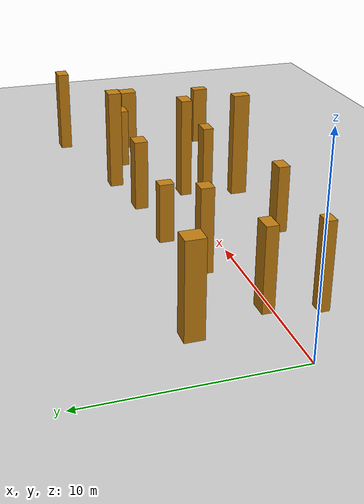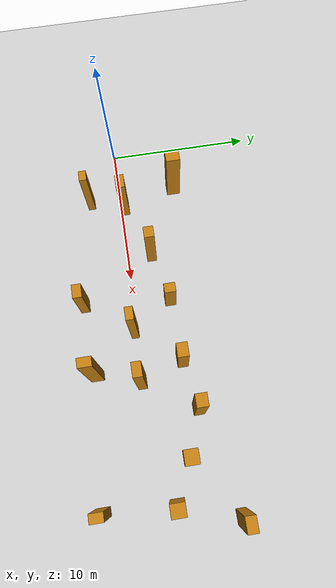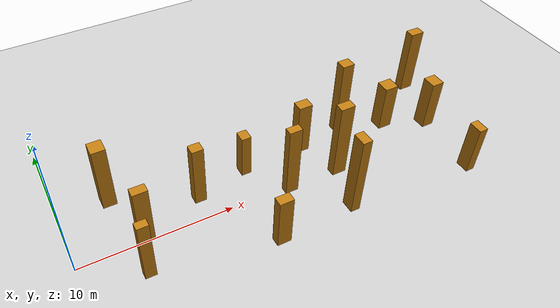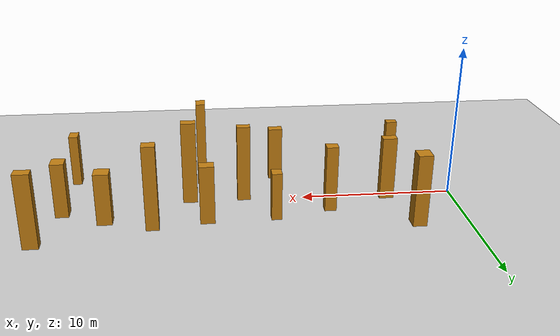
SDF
<sdf version="1.7">
 <world name="default">
  <light name="sun" type="directional">
   <pose>0 0 10 0 -0 0</pose>
   <diffuse>0.8 0.8 0.8 1</diffuse>
   <specular>0.2 0.2 0.2 1</specular>
   <attenuation>
    <range>1000</range>
    <constant>0.9</constant>
    <linear>0.01</linear>
    <quadratic>0.001</quadratic>
   </attenuation>
   <direction>-0.5 0.1 -0.9</direction>
   <spot><inner_angle>0</inner_angle><outer_angle>0</outer_angle><falloff>0</falloff></spot>
  </light>
  <model name="ground_plane">
   <static>1</static>
   <link name="link">
    <collision name="collision">
     <geometry><plane><normal>0 0 1</normal><size>100 100</size></plane></geometry>
     <surface>
      <contact><collide_bitmask>65535</collide_bitmask></contact>
      <friction><ode><mu>100</mu><mu2>50</mu2></ode></friction>
     </surface>
    </collision>
    <visual name="visual">
     <cast_shadows>0</cast_shadows>
     <geometry><plane><normal>0 0 1</normal><size>100 100</size></plane></geometry>
     <material>
      <script><uri>file://media/materials/scripts/gazebo.material</uri><name>Gazebo/Grey</name></script>
     </material>
    </visual>
   </link>
  </model>
  <gravity>0 0 -9.8</gravity>
  <magnetic_field>6e-06 2.3e-05 -4.2e-05</magnetic_field>
  <atmosphere type="adiabatic"/>
  <physics type="ode">
   <max_step_size>0.001</max_step_size>
   <real_time_factor>1</real_time_factor>
   <real_time_update_rate>1000</real_time_update_rate>
  </physics>
  <scene><ambient>0.4 0.4 0.4 1</ambient><background>0.7 0.7 0.7 1</background><shadows>1</shadows></scene>
  <spherical_coordinates>
   <surface_model>EARTH_WGS84</surface_model>
   <latitude_deg>0</latitude_deg>
   <longitude_deg>0</longitude_deg>
   <elevation>0</elevation>
   <heading_deg>0</heading_deg>
  </spherical_coordinates>
  <plugin name="gazebo_octomap" filename="libBuildOctomapPlugin.so"/>
  <model name="model0">
   <link name="link">
    <inertial>
     <mass>1</mass>
     <inertia>
      <ixx>0.166667</ixx>
      <ixy>0</ixy>
      <ixz>0</ixz>
      <iyy>0.166667</iyy>
      <iyz>0</iyz>
      <izz>0.166667</izz>
     </inertia>
    </inertial>
    <visual name="visual">
     <geometry><box><size>0.8929045358723207 0.9454066113554076 4.762636633681859</size></box></geometry>
     <material>
      <script><name>Gazebo/Grey</name><uri>file://media/materials/scripts/gazebo.material</uri></script>
      <shader type="pixel"><normal_map>__default__</normal_map></shader>
      <ambient>0.757 0.49 0.067 1</ambient>
      <diffuse>0.7 0.7 0.7 1</diffuse>
      <specular>0.01 0.01 0.01 1</specular>
      <emissive>0 0 0 1</emissive>
     </material>
    </visual>
    <collision name="collision">
     <geometry><box><size>0.8929045358723207 0.9454066113554076 4.762636633681859</size></box></geometry>
     <surface>
      <friction>
       <ode><mu>1</mu><mu2>1</mu2><fdir1>0 0 0</fdir1><slip1>0</slip1><slip2>0</slip2></ode>
       <torsional>
        <coefficient>1</coefficient>
        <patch_radius>0</patch_radius>
        <surface_radius>0</surface_radius>
        <use_patch_radius>1</use_patch_radius>
        <ode><slip>0</slip></ode>
       </torsional>
      </friction>
      <bounce><restitution_coefficient>0</restitution_coefficient><threshold>1e+06</threshold></bounce>
      <contact>
       <collide_without_contact>0</collide_without_contact>
       <collide_without_contact_bitmask>1</collide_without_contact_bitmask>
       <collide_bitmask>1</collide_bitmask>
       <ode>
        <soft_cfm>0</soft_cfm>
        <soft_erp>0.2</soft_erp>
        <kp>1e+13</kp>
        <kd>1</kd>
        <max_vel>0.01</max_vel>
        <min_depth>0</min_depth>
       </ode>
       <bullet>
        <split_impulse>1</split_impulse>
        <split_impulse_penetration_threshold>-0.01</split_impulse_penetration_threshold>
        <soft_cfm>0</soft_cfm>
        <soft_erp>0.2</soft_erp>
        <kp>1e+13</kp>
        <kd>1</kd>
       </bullet>
      </contact>
     </surface>
    </collision>
   </link>
   <static>0</static>
   <pose>3.2927277131958865 4.068396012108558 2.3813183168409293 0.0 0.0 0.0</pose>
  </model>
  <model name="model1">
   <link name="link">
    <inertial>
     <mass>1</mass>
     <inertia>
      <ixx>0.166667</ixx>
      <ixy>0</ixy>
      <ixz>0</ixz>
      <iyy>0.166667</iyy>
      <iyz>0</iyz>
      <izz>0.166667</izz>
     </inertia>
    </inertial>
    <visual name="visual">
     <geometry><box><size>0.9470893128923695 0.605409406798778 5.585096997951726</size></box></geometry>
     <material>
      <script><name>Gazebo/Grey</name><uri>file://media/materials/scripts/gazebo.material</uri></script>
      <shader type="pixel"><normal_map>__default__</normal_map></shader>
      <ambient>0.757 0.49 0.067 1</ambient>
      <diffuse>0.7 0.7 0.7 1</diffuse>
      <specular>0.01 0.01 0.01 1</specular>
      <emissive>0 0 0 1</emissive>
     </material>
    </visual>
    <collision name="collision">
     <geometry><box><size>0.9470893128923695 0.605409406798778 5.585096997951726</size></box></geometry>
     <surface>
      <friction>
       <ode><mu>1</mu><mu2>1</mu2><fdir1>0 0 0</fdir1><slip1>0</slip1><slip2>0</slip2></ode>
       <torsional>
        <coefficient>1</coefficient>
        <patch_radius>0</patch_radius>
        <surface_radius>0</surface_radius>
        <use_patch_radius>1</use_patch_radius>
        <ode><slip>0</slip></ode>
       </torsional>
      </friction>
      <bounce><restitution_coefficient>0</restitution_coefficient><threshold>1e+06</threshold></bounce>
      <contact>
       <collide_without_contact>0</collide_without_contact>
       <collide_without_contact_bitmask>1</collide_without_contact_bitmask>
       <collide_bitmask>1</collide_bitmask>
       <ode>
        <soft_cfm>0</soft_cfm>
        <soft_erp>0.2</soft_erp>
        <kp>1e+13</kp>
        <kd>1</kd>
        <max_vel>0.01</max_vel>
        <min_depth>0</min_depth>
       </ode>
       <bullet>
        <split_impulse>1</split_impulse>
        <split_impulse_penetration_threshold>-0.01</split_impulse_penetration_threshold>
        <soft_cfm>0</soft_cfm>
        <soft_erp>0.2</soft_erp>
        <kp>1e+13</kp>
        <kd>1</kd>
       </bullet>
      </contact>
     </surface>
    </collision>
   </link>
   <static>0</static>
   <pose>17.478678115539758 -0.21868315363926616 2.792548498975863 0.0 0.0 0.0</pose>
  </model>
  <model name="model2">
   <link name="link">
    <inertial>
     <mass>1</mass>
     <inertia>
      <ixx>0.166667</ixx>
      <ixy>0</ixy>
      <ixz>0</ixz>
      <iyy>0.166667</iyy>
      <iyz>0</iyz>
      <izz>0.166667</izz>
     </inertia>
    </inertial>
    <visual name="visual">
     <geometry><box><size>0.7586496631423523 0.672340536634543 4.43350727321868</size></box></geometry>
     <material>
      <script><name>Gazebo/Grey</name><uri>file://media/materials/scripts/gazebo.material</uri></script>
      <shader type="pixel"><normal_map>__default__</normal_map></shader>
      <ambient>0.757 0.49 0.067 1</ambient>
      <diffuse>0.7 0.7 0.7 1</diffuse>
      <specular>0.01 0.01 0.01 1</specular>
      <emissive>0 0 0 1</emissive>
     </material>
    </visual>
    <collision name="collision">
     <geometry><box><size>0.7586496631423523 0.672340536634543 4.43350727321868</size></box></geometry>
     <surface>
      <friction>
       <ode><mu>1</mu><mu2>1</mu2><fdir1>0 0 0</fdir1><slip1>0</slip1><slip2>0</slip2></ode>
       <torsional>
        <coefficient>1</coefficient>
        <patch_radius>0</patch_radius>
        <surface_radius>0</surface_radius>
        <use_patch_radius>1</use_patch_radius>
        <ode><slip>0</slip></ode>
       </torsional>
      </friction>
      <bounce><restitution_coefficient>0</restitution_coefficient><threshold>1e+06</threshold></bounce>
      <contact>
       <collide_without_contact>0</collide_without_contact>
       <collide_without_contact_bitmask>1</collide_without_contact_bitmask>
       <collide_bitmask>1</collide_bitmask>
       <ode>
        <soft_cfm>0</soft_cfm>
        <soft_erp>0.2</soft_erp>
        <kp>1e+13</kp>
        <kd>1</kd>
        <max_vel>0.01</max_vel>
        <min_depth>0</min_depth>
       </ode>
       <bullet>
        <split_impulse>1</split_impulse>
        <split_impulse_penetration_threshold>-0.01</split_impulse_penetration_threshold>
        <soft_cfm>0</soft_cfm>
        <soft_erp>0.2</soft_erp>
        <kp>1e+13</kp>
        <kd>1</kd>
       </bullet>
      </contact>
     </surface>
    </collision>
   </link>
   <static>0</static>
   <pose>8.469328146761356 1.7014155116074372 2.21675363660934 0.0 0.0 0.0</pose>
  </model>
  <model name="model3">
   <link name="link">
    <inertial>
     <mass>1</mass>
     <inertia>
      <ixx>0.166667</ixx>
      <ixy>0</ixy>
      <ixz>0</ixz>
      <iyy>0.166667</iyy>
      <iyz>0</iyz>
      <izz>0.166667</izz>
     </inertia>
    </inertial>
    <visual name="visual">
     <geometry><box><size>0.965750420478436 0.9278659229554913 3.470317268848132</size></box></geometry>
     <material>
      <script><name>Gazebo/Grey</name><uri>file://media/materials/scripts/gazebo.material</uri></script>
      <shader type="pixel"><normal_map>__default__</normal_map></shader>
      <ambient>0.757 0.49 0.067 1</ambient>
      <diffuse>0.7 0.7 0.7 1</diffuse>
      <specular>0.01 0.01 0.01 1</specular>
      <emissive>0 0 0 1</emissive>
     </material>
    </visual>
    <collision name="collision">
     <geometry><box><size>0.965750420478436 0.9278659229554913 3.470317268848132</size></box></geometry>
     <surface>
      <friction>
       <ode><mu>1</mu><mu2>1</mu2><fdir1>0 0 0</fdir1><slip1>0</slip1><slip2>0</slip2></ode>
       <torsional>
        <coefficient>1</coefficient>
        <patch_radius>0</patch_radius>
        <surface_radius>0</surface_radius>
        <use_patch_radius>1</use_patch_radius>
        <ode><slip>0</slip></ode>
       </torsional>
      </friction>
      <bounce><restitution_coefficient>0</restitution_coefficient><threshold>1e+06</threshold></bounce>
      <contact>
       <collide_without_contact>0</collide_without_contact>
       <collide_without_contact_bitmask>1</collide_without_contact_bitmask>
       <collide_bitmask>1</collide_bitmask>
       <ode>
        <soft_cfm>0</soft_cfm>
        <soft_erp>0.2</soft_erp>
        <kp>1e+13</kp>
        <kd>1</kd>
        <max_vel>0.01</max_vel>
        <min_depth>0</min_depth>
       </ode>
       <bullet>
        <split_impulse>1</split_impulse>
        <split_impulse_penetration_threshold>-0.01</split_impulse_penetration_threshold>
        <soft_cfm>0</soft_cfm>
        <soft_erp>0.2</soft_erp>
        <kp>1e+13</kp>
        <kd>1</kd>
       </bullet>
      </contact>
     </surface>
    </collision>
   </link>
   <static>0</static>
   <pose>22.824301288815562 2.2058661550759693 1.735158634424066 0.0 0.0 0.0</pose>
  </model>
  <model name="model4">
   <link name="link">
    <inertial>
     <mass>1</mass>
     <inertia>
      <ixx>0.166667</ixx>
      <ixy>0</ixy>
      <ixz>0</ixz>
      <iyy>0.166667</iyy>
      <iyz>0</iyz>
      <izz>0.166667</izz>
     </inertia>
    </inertial>
    <visual name="visual">
     <geometry><box><size>0.7045779617048766 0.502029378168212 4.446525824966466</size></box></geometry>
     <material>
      <script><name>Gazebo/Grey</name><uri>file://media/materials/scripts/gazebo.material</uri></script>
      <shader type="pixel"><normal_map>__default__</normal_map></shader>
      <ambient>0.757 0.49 0.067 1</ambient>
      <diffuse>0.7 0.7 0.7 1</diffuse>
      <specular>0.01 0.01 0.01 1</specular>
      <emissive>0 0 0 1</emissive>
     </material>
    </visual>
    <collision name="collision">
     <geometry><box><size>0.7045779617048766 0.502029378168212 4.446525824966466</size></box></geometry>
     <surface>
      <friction>
       <ode><mu>1</mu><mu2>1</mu2><fdir1>0 0 0</fdir1><slip1>0</slip1><slip2>0</slip2></ode>
       <torsional>
        <coefficient>1</coefficient>
        <patch_radius>0</patch_radius>
        <surface_radius>0</surface_radius>
        <use_patch_radius>1</use_patch_radius>
        <ode><slip>0</slip></ode>
       </torsional>
      </friction>
      <bounce><restitution_coefficient>0</restitution_coefficient><threshold>1e+06</threshold></bounce>
      <contact>
       <collide_without_contact>0</collide_without_contact>
       <collide_without_contact_bitmask>1</collide_without_contact_bitmask>
       <collide_bitmask>1</collide_bitmask>
       <ode>
        <soft_cfm>0</soft_cfm>
        <soft_erp>0.2</soft_erp>
        <kp>1e+13</kp>
        <kd>1</kd>
        <max_vel>0.01</max_vel>
        <min_depth>0</min_depth>
       </ode>
       <bullet>
        <split_impulse>1</split_impulse>
        <split_impulse_penetration_threshold>-0.01</split_impulse_penetration_threshold>
        <soft_cfm>0</soft_cfm>
        <soft_erp>0.2</soft_erp>
        <kp>1e+13</kp>
        <kd>1</kd>
       </bullet>
      </contact>
     </surface>
    </collision>
   </link>
   <static>0</static>
   <pose>3.7252648437892395 -2.130388714024558 2.223262912483233 0.0 0.0 0.0</pose>
  </model>
  <model name="model5">
   <link name="link">
    <inertial>
     <mass>1</mass>
     <inertia>
      <ixx>0.166667</ixx>
      <ixy>0</ixy>
      <ixz>0</ixz>
      <iyy>0.166667</iyy>
      <iyz>0</iyz>
      <izz>0.166667</izz>
     </inertia>
    </inertial>
    <visual name="visual">
     <geometry><box><size>0.6474561484890926 0.7651448063258217 3.1776983689442098</size></box></geometry>
     <material>
      <script><name>Gazebo/Grey</name><uri>file://media/materials/scripts/gazebo.material</uri></script>
      <shader type="pixel"><normal_map>__default__</normal_map></shader>
      <ambient>0.757 0.49 0.067 1</ambient>
      <diffuse>0.7 0.7 0.7 1</diffuse>
      <specular>0.01 0.01 0.01 1</specular>
      <emissive>0 0 0 1</emissive>
     </material>
    </visual>
    <collision name="collision">
     <geometry><box><size>0.6474561484890926 0.7651448063258217 3.1776983689442098</size></box></geometry>
     <surface>
      <friction>
       <ode><mu>1</mu><mu2>1</mu2><fdir1>0 0 0</fdir1><slip1>0</slip1><slip2>0</slip2></ode>
       <torsional>
        <coefficient>1</coefficient>
        <patch_radius>0</patch_radius>
        <surface_radius>0</surface_radius>
        <use_patch_radius>1</use_patch_radius>
        <ode><slip>0</slip></ode>
       </torsional>
      </friction>
      <bounce><restitution_coefficient>0</restitution_coefficient><threshold>1e+06</threshold></bounce>
      <contact>
       <collide_without_contact>0</collide_without_contact>
       <collide_without_contact_bitmask>1</collide_without_contact_bitmask>
       <collide_bitmask>1</collide_bitmask>
       <ode>
        <soft_cfm>0</soft_cfm>
        <soft_erp>0.2</soft_erp>
        <kp>1e+13</kp>
        <kd>1</kd>
        <max_vel>0.01</max_vel>
        <min_depth>0</min_depth>
       </ode>
       <bullet>
        <split_impulse>1</split_impulse>
        <split_impulse_penetration_threshold>-0.01</split_impulse_penetration_threshold>
        <soft_cfm>0</soft_cfm>
        <soft_erp>0.2</soft_erp>
        <kp>1e+13</kp>
        <kd>1</kd>
       </bullet>
      </contact>
     </surface>
    </collision>
   </link>
   <static>0</static>
   <pose>12.063983293186435 2.5362139312235135 1.5888491844721049 0.0 0.0 0.0</pose>
  </model>
  <model name="model6">
   <link name="link">
    <inertial>
     <mass>1</mass>
     <inertia>
      <ixx>0.166667</ixx>
      <ixy>0</ixy>
      <ixz>0</ixz>
      <iyy>0.166667</iyy>
      <iyz>0</iyz>
      <izz>0.166667</izz>
     </inertia>
    </inertial>
    <visual name="visual">
     <geometry><box><size>0.8618088540382973 0.9490479113124107 3.6916593007984337</size></box></geometry>
     <material>
      <script><name>Gazebo/Grey</name><uri>file://media/materials/scripts/gazebo.material</uri></script>
      <shader type="pixel"><normal_map>__default__</normal_map></shader>
      <ambient>0.757 0.49 0.067 1</ambient>
      <diffuse>0.7 0.7 0.7 1</diffuse>
      <specular>0.01 0.01 0.01 1</specular>
      <emissive>0 0 0 1</emissive>
     </material>
    </visual>
    <collision name="collision">
     <geometry><box><size>0.8618088540382973 0.9490479113124107 3.6916593007984337</size></box></geometry>
     <surface>
      <friction>
       <ode><mu>1</mu><mu2>1</mu2><fdir1>0 0 0</fdir1><slip1>0</slip1><slip2>0</slip2></ode>
       <torsional>
        <coefficient>1</coefficient>
        <patch_radius>0</patch_radius>
        <surface_radius>0</surface_radius>
        <use_patch_radius>1</use_patch_radius>
        <ode><slip>0</slip></ode>
       </torsional>
      </friction>
      <bounce><restitution_coefficient>0</restitution_coefficient><threshold>1e+06</threshold></bounce>
      <contact>
       <collide_without_contact>0</collide_without_contact>
       <collide_without_contact_bitmask>1</collide_without_contact_bitmask>
       <collide_bitmask>1</collide_bitmask>
       <ode>
        <soft_cfm>0</soft_cfm>
        <soft_erp>0.2</soft_erp>
        <kp>1e+13</kp>
        <kd>1</kd>
        <max_vel>0.01</max_vel>
        <min_depth>0</min_depth>
       </ode>
       <bullet>
        <split_impulse>1</split_impulse>
        <split_impulse_penetration_threshold>-0.01</split_impulse_penetration_threshold>
        <soft_cfm>0</soft_cfm>
        <soft_erp>0.2</soft_erp>
        <kp>1e+13</kp>
        <kd>1</kd>
       </bullet>
      </contact>
     </surface>
    </collision>
   </link>
   <static>0</static>
   <pose>25.622206363777067 0.9497416161496322 1.8458296503992169 0.0 0.0 0.0</pose>
  </model>
  <model name="model7">
   <link name="link">
    <inertial>
     <mass>1</mass>
     <inertia>
      <ixx>0.166667</ixx>
      <ixy>0</ixy>
      <ixz>0</ixz>
      <iyy>0.166667</iyy>
      <iyz>0</iyz>
      <izz>0.166667</izz>
     </inertia>
    </inertial>
    <visual name="visual">
     <geometry><box><size>0.5992797208808035 0.9016448159714459 3.5427597003922275</size></box></geometry>
     <material>
      <script><name>Gazebo/Grey</name><uri>file://media/materials/scripts/gazebo.material</uri></script>
      <shader type="pixel"><normal_map>__default__</normal_map></shader>
      <ambient>0.757 0.49 0.067 1</ambient>
      <diffuse>0.7 0.7 0.7 1</diffuse>
      <specular>0.01 0.01 0.01 1</specular>
      <emissive>0 0 0 1</emissive>
     </material>
    </visual>
    <collision name="collision">
     <geometry><box><size>0.5992797208808035 0.9016448159714459 3.5427597003922275</size></box></geometry>
     <surface>
      <friction>
       <ode><mu>1</mu><mu2>1</mu2><fdir1>0 0 0</fdir1><slip1>0</slip1><slip2>0</slip2></ode>
       <torsional>
        <coefficient>1</coefficient>
        <patch_radius>0</patch_radius>
        <surface_radius>0</surface_radius>
        <use_patch_radius>1</use_patch_radius>
        <ode><slip>0</slip></ode>
       </torsional>
      </friction>
      <bounce><restitution_coefficient>0</restitution_coefficient><threshold>1e+06</threshold></bounce>
      <contact>
       <collide_without_contact>0</collide_without_contact>
       <collide_without_contact_bitmask>1</collide_without_contact_bitmask>
       <collide_bitmask>1</collide_bitmask>
       <ode>
        <soft_cfm>0</soft_cfm>
        <soft_erp>0.2</soft_erp>
        <kp>1e+13</kp>
        <kd>1</kd>
        <max_vel>0.01</max_vel>
        <min_depth>0</min_depth>
       </ode>
       <bullet>
        <split_impulse>1</split_impulse>
        <split_impulse_penetration_threshold>-0.01</split_impulse_penetration_threshold>
        <soft_cfm>0</soft_cfm>
        <soft_erp>0.2</soft_erp>
        <kp>1e+13</kp>
        <kd>1</kd>
       </bullet>
      </contact>
     </surface>
    </collision>
   </link>
   <static>0</static>
   <pose>25.292403606730204 -3.785168110270315 1.7713798501961138 0.0 0.0 0.0</pose>
  </model>
  <model name="model8">
   <link name="link">
    <inertial>
     <mass>1</mass>
     <inertia>
      <ixx>0.166667</ixx>
      <ixy>0</ixy>
      <ixz>0</ixz>
      <iyy>0.166667</iyy>
      <iyz>0</iyz>
      <izz>0.166667</izz>
     </inertia>
    </inertial>
    <visual name="visual">
     <geometry><box><size>0.6117356161818759 0.8943617654314897 5.824705204891459</size></box></geometry>
     <material>
      <script><name>Gazebo/Grey</name><uri>file://media/materials/scripts/gazebo.material</uri></script>
      <shader type="pixel"><normal_map>__default__</normal_map></shader>
      <ambient>0.757 0.49 0.067 1</ambient>
      <diffuse>0.7 0.7 0.7 1</diffuse>
      <specular>0.01 0.01 0.01 1</specular>
      <emissive>0 0 0 1</emissive>
     </material>
    </visual>
    <collision name="collision">
     <geometry><box><size>0.6117356161818759 0.8943617654314897 5.824705204891459</size></box></geometry>
     <surface>
      <friction>
       <ode><mu>1</mu><mu2>1</mu2><fdir1>0 0 0</fdir1><slip1>0</slip1><slip2>0</slip2></ode>
       <torsional>
        <coefficient>1</coefficient>
        <patch_radius>0</patch_radius>
        <surface_radius>0</surface_radius>
        <use_patch_radius>1</use_patch_radius>
        <ode><slip>0</slip></ode>
       </torsional>
      </friction>
      <bounce><restitution_coefficient>0</restitution_coefficient><threshold>1e+06</threshold></bounce>
      <contact>
       <collide_without_contact>0</collide_without_contact>
       <collide_without_contact_bitmask>1</collide_without_contact_bitmask>
       <collide_bitmask>1</collide_bitmask>
       <ode>
        <soft_cfm>0</soft_cfm>
        <soft_erp>0.2</soft_erp>
        <kp>1e+13</kp>
        <kd>1</kd>
        <max_vel>0.01</max_vel>
        <min_depth>0</min_depth>
       </ode>
       <bullet>
        <split_impulse>1</split_impulse>
        <split_impulse_penetration_threshold>-0.01</split_impulse_penetration_threshold>
        <soft_cfm>0</soft_cfm>
        <soft_erp>0.2</soft_erp>
        <kp>1e+13</kp>
        <kd>1</kd>
       </bullet>
      </contact>
     </surface>
    </collision>
   </link>
   <static>0</static>
   <pose>16.629644481768555 -3.17156933114933 2.9123526024457296 0.0 0.0 0.0</pose>
  </model>
  <model name="model9">
   <link name="link">
    <inertial>
     <mass>1</mass>
     <inertia>
      <ixx>0.166667</ixx>
      <ixy>0</ixy>
      <ixz>0</ixz>
      <iyy>0.166667</iyy>
      <iyz>0</iyz>
      <izz>0.166667</izz>
     </inertia>
    </inertial>
    <visual name="visual">
     <geometry><box><size>0.9323685987942523 0.7250848639714985 3.8927873400295248</size></box></geometry>
     <material>
      <script><name>Gazebo/Grey</name><uri>file://media/materials/scripts/gazebo.material</uri></script>
      <shader type="pixel"><normal_map>__default__</normal_map></shader>
      <ambient>0.757 0.49 0.067 1</ambient>
      <diffuse>0.7 0.7 0.7 1</diffuse>
      <specular>0.01 0.01 0.01 1</specular>
      <emissive>0 0 0 1</emissive>
     </material>
    </visual>
    <collision name="collision">
     <geometry><box><size>0.9323685987942523 0.7250848639714985 3.8927873400295248</size></box></geometry>
     <surface>
      <friction>
       <ode><mu>1</mu><mu2>1</mu2><fdir1>0 0 0</fdir1><slip1>0</slip1><slip2>0</slip2></ode>
       <torsional>
        <coefficient>1</coefficient>
        <patch_radius>0</patch_radius>
        <surface_radius>0</surface_radius>
        <use_patch_radius>1</use_patch_radius>
        <ode><slip>0</slip></ode>
       </torsional>
      </friction>
      <bounce><restitution_coefficient>0</restitution_coefficient><threshold>1e+06</threshold></bounce>
      <contact>
       <collide_without_contact>0</collide_without_contact>
       <collide_without_contact_bitmask>1</collide_without_contact_bitmask>
       <collide_bitmask>1</collide_bitmask>
       <ode>
        <soft_cfm>0</soft_cfm>
        <soft_erp>0.2</soft_erp>
        <kp>1e+13</kp>
        <kd>1</kd>
        <max_vel>0.01</max_vel>
        <min_depth>0</min_depth>
       </ode>
       <bullet>
        <split_impulse>1</split_impulse>
        <split_impulse_penetration_threshold>-0.01</split_impulse_penetration_threshold>
        <soft_cfm>0</soft_cfm>
        <soft_erp>0.2</soft_erp>
        <kp>1e+13</kp>
        <kd>1</kd>
       </bullet>
      </contact>
     </surface>
    </collision>
   </link>
   <static>0</static>
   <pose>16.414177407288058 2.6836210200116692 1.9463936700147624 0.0 0.0 0.0</pose>
  </model>
  <model name="model10">
   <link name="link">
    <inertial>
     <mass>1</mass>
     <inertia>
      <ixx>0.166667</ixx>
      <ixy>0</ixy>
      <ixz>0</ixz>
      <iyy>0.166667</iyy>
      <iyz>0</iyz>
      <izz>0.166667</izz>
     </inertia>
    </inertial>
    <visual name="visual">
     <geometry><box><size>0.8557313890961126 0.5205910985928138 5.19170561166615</size></box></geometry>
     <material>
      <script><name>Gazebo/Grey</name><uri>file://media/materials/scripts/gazebo.material</uri></script>
      <shader type="pixel"><normal_map>__default__</normal_map></shader>
      <ambient>0.757 0.49 0.067 1</ambient>
      <diffuse>0.7 0.7 0.7 1</diffuse>
      <specular>0.01 0.01 0.01 1</specular>
      <emissive>0 0 0 1</emissive>
     </material>
    </visual>
    <collision name="collision">
     <geometry><box><size>0.8557313890961126 0.5205910985928138 5.19170561166615</size></box></geometry>
     <surface>
      <friction>
       <ode><mu>1</mu><mu2>1</mu2><fdir1>0 0 0</fdir1><slip1>0</slip1><slip2>0</slip2></ode>
       <torsional>
        <coefficient>1</coefficient>
        <patch_radius>0</patch_radius>
        <surface_radius>0</surface_radius>
        <use_patch_radius>1</use_patch_radius>
        <ode><slip>0</slip></ode>
       </torsional>
      </friction>
      <bounce><restitution_coefficient>0</restitution_coefficient><threshold>1e+06</threshold></bounce>
      <contact>
       <collide_without_contact>0</collide_without_contact>
       <collide_without_contact_bitmask>1</collide_without_contact_bitmask>
       <collide_bitmask>1</collide_bitmask>
       <ode>
        <soft_cfm>0</soft_cfm>
        <soft_erp>0.2</soft_erp>
        <kp>1e+13</kp>
        <kd>1</kd>
        <max_vel>0.01</max_vel>
        <min_depth>0</min_depth>
       </ode>
       <bullet>
        <split_impulse>1</split_impulse>
        <split_impulse_penetration_threshold>-0.01</split_impulse_penetration_threshold>
        <soft_cfm>0</soft_cfm>
        <soft_erp>0.2</soft_erp>
        <kp>1e+13</kp>
        <kd>1</kd>
       </bullet>
      </contact>
     </surface>
    </collision>
   </link>
   <static>0</static>
   <pose>13.938970786378237 -0.24079225928719694 2.595852805833075 0.0 0.0 0.0</pose>
  </model>
  <model name="model11">
   <link name="link">
    <inertial>
     <mass>1</mass>
     <inertia>
      <ixx>0.166667</ixx>
      <ixy>0</ixy>
      <ixz>0</ixz>
      <iyy>0.166667</iyy>
      <iyz>0</iyz>
      <izz>0.166667</izz>
     </inertia>
    </inertial>
    <visual name="visual">
     <geometry><box><size>0.9688630328347809 0.656847180412591 4.858826708409785</size></box></geometry>
     <material>
      <script><name>Gazebo/Grey</name><uri>file://media/materials/scripts/gazebo.material</uri></script>
      <shader type="pixel"><normal_map>__default__</normal_map></shader>
      <ambient>0.757 0.49 0.067 1</ambient>
      <diffuse>0.7 0.7 0.7 1</diffuse>
      <specular>0.01 0.01 0.01 1</specular>
      <emissive>0 0 0 1</emissive>
     </material>
    </visual>
    <collision name="collision">
     <geometry><box><size>0.9688630328347809 0.656847180412591 4.858826708409785</size></box></geometry>
     <surface>
      <friction>
       <ode><mu>1</mu><mu2>1</mu2><fdir1>0 0 0</fdir1><slip1>0</slip1><slip2>0</slip2></ode>
       <torsional>
        <coefficient>1</coefficient>
        <patch_radius>0</patch_radius>
        <surface_radius>0</surface_radius>
        <use_patch_radius>1</use_patch_radius>
        <ode><slip>0</slip></ode>
       </torsional>
      </friction>
      <bounce><restitution_coefficient>0</restitution_coefficient><threshold>1e+06</threshold></bounce>
      <contact>
       <collide_without_contact>0</collide_without_contact>
       <collide_without_contact_bitmask>1</collide_without_contact_bitmask>
       <collide_bitmask>1</collide_bitmask>
       <ode>
        <soft_cfm>0</soft_cfm>
        <soft_erp>0.2</soft_erp>
        <kp>1e+13</kp>
        <kd>1</kd>
        <max_vel>0.01</max_vel>
        <min_depth>0</min_depth>
       </ode>
       <bullet>
        <split_impulse>1</split_impulse>
        <split_impulse_penetration_threshold>-0.01</split_impulse_penetration_threshold>
        <soft_cfm>0</soft_cfm>
        <soft_erp>0.2</soft_erp>
        <kp>1e+13</kp>
        <kd>1</kd>
       </bullet>
      </contact>
     </surface>
    </collision>
   </link>
   <static>0</static>
   <pose>26.87141534892647 4.862888141568698 2.4294133542048924 0.0 0.0 0.0</pose>
  </model>
  <model name="model12">
   <link name="link">
    <inertial>
     <mass>1</mass>
     <inertia>
      <ixx>0.166667</ixx>
      <ixy>0</ixy>
      <ixz>0</ixz>
      <iyy>0.166667</iyy>
      <iyz>0</iyz>
      <izz>0.166667</izz>
     </inertia>
    </inertial>
    <visual name="visual">
     <geometry><box><size>0.8247095174017502 0.7255486202057473 5.593252855751089</size></box></geometry>
     <material>
      <script><name>Gazebo/Grey</name><uri>file://media/materials/scripts/gazebo.material</uri></script>
      <shader type="pixel"><normal_map>__default__</normal_map></shader>
      <ambient>0.757 0.49 0.067 1</ambient>
      <diffuse>0.7 0.7 0.7 1</diffuse>
      <specular>0.01 0.01 0.01 1</specular>
      <emissive>0 0 0 1</emissive>
     </material>
    </visual>
    <collision name="collision">
     <geometry><box><size>0.8247095174017502 0.7255486202057473 5.593252855751089</size></box></geometry>
     <surface>
      <friction>
       <ode><mu>1</mu><mu2>1</mu2><fdir1>0 0 0</fdir1><slip1>0</slip1><slip2>0</slip2></ode>
       <torsional>
        <coefficient>1</coefficient>
        <patch_radius>0</patch_radius>
        <surface_radius>0</surface_radius>
        <use_patch_radius>1</use_patch_radius>
        <ode><slip>0</slip></ode>
       </torsional>
      </friction>
      <bounce><restitution_coefficient>0</restitution_coefficient><threshold>1e+06</threshold></bounce>
      <contact>
       <collide_without_contact>0</collide_without_contact>
       <collide_without_contact_bitmask>1</collide_without_contact_bitmask>
       <collide_bitmask>1</collide_bitmask>
       <ode>
        <soft_cfm>0</soft_cfm>
        <soft_erp>0.2</soft_erp>
        <kp>1e+13</kp>
        <kd>1</kd>
        <max_vel>0.01</max_vel>
        <min_depth>0</min_depth>
       </ode>
       <bullet>
        <split_impulse>1</split_impulse>
        <split_impulse_penetration_threshold>-0.01</split_impulse_penetration_threshold>
        <soft_cfm>0</soft_cfm>
        <soft_erp>0.2</soft_erp>
        <kp>1e+13</kp>
        <kd>1</kd>
       </bullet>
      </contact>
     </surface>
    </collision>
   </link>
   <static>0</static>
   <pose>19.82035527642325 3.2431338590719463 2.7966264278755446 0.0 0.0 0.0</pose>
  </model>
  <model name="model13">
   <link name="link">
    <inertial>
     <mass>1</mass>
     <inertia>
      <ixx>0.166667</ixx>
      <ixy>0</ixy>
      <ixz>0</ixz>
      <iyy>0.166667</iyy>
      <iyz>0</iyz>
      <izz>0.166667</izz>
     </inertia>
    </inertial>
    <visual name="visual">
     <geometry><box><size>0.9159102543863908 0.6157078125441733 3.6720227482778784</size></box></geometry>
     <material>
      <script><name>Gazebo/Grey</name><uri>file://media/materials/scripts/gazebo.material</uri></script>
      <shader type="pixel"><normal_map>__default__</normal_map></shader>
      <ambient>0.757 0.49 0.067 1</ambient>
      <diffuse>0.7 0.7 0.7 1</diffuse>
      <specular>0.01 0.01 0.01 1</specular>
      <emissive>0 0 0 1</emissive>
     </material>
    </visual>
    <collision name="collision">
     <geometry><box><size>0.9159102543863908 0.6157078125441733 3.6720227482778784</size></box></geometry>
     <surface>
      <friction>
       <ode><mu>1</mu><mu2>1</mu2><fdir1>0 0 0</fdir1><slip1>0</slip1><slip2>0</slip2></ode>
       <torsional>
        <coefficient>1</coefficient>
        <patch_radius>0</patch_radius>
        <surface_radius>0</surface_radius>
        <use_patch_radius>1</use_patch_radius>
        <ode><slip>0</slip></ode>
       </torsional>
      </friction>
      <bounce><restitution_coefficient>0</restitution_coefficient><threshold>1e+06</threshold></bounce>
      <contact>
       <collide_without_contact>0</collide_without_contact>
       <collide_without_contact_bitmask>1</collide_without_contact_bitmask>
       <collide_bitmask>1</collide_bitmask>
       <ode>
        <soft_cfm>0</soft_cfm>
        <soft_erp>0.2</soft_erp>
        <kp>1e+13</kp>
        <kd>1</kd>
        <max_vel>0.01</max_vel>
        <min_depth>0</min_depth>
       </ode>
       <bullet>
        <split_impulse>1</split_impulse>
        <split_impulse_penetration_threshold>-0.01</split_impulse_penetration_threshold>
        <soft_cfm>0</soft_cfm>
        <soft_erp>0.2</soft_erp>
        <kp>1e+13</kp>
        <kd>1</kd>
       </bullet>
      </contact>
     </surface>
    </collision>
   </link>
   <static>0</static>
   <pose>11.509780707005989 -3.471225545498581 1.8360113741389392 0.0 0.0 0.0</pose>
  </model>
  <model name="model14">
   <link name="link">
    <inertial>
     <mass>1</mass>
     <inertia>
      <ixx>0.166667</ixx>
      <ixy>0</ixy>
      <ixz>0</ixz>
      <iyy>0.166667</iyy>
      <iyz>0</iyz>
      <izz>0.166667</izz>
     </inertia>
    </inertial>
    <visual name="visual">
     <geometry><box><size>0.9444564357980814 0.5993916125018386 4.277870217320933</size></box></geometry>
     <material>
      <script><name>Gazebo/Grey</name><uri>file://media/materials/scripts/gazebo.material</uri></script>
      <shader type="pixel"><normal_map>__default__</normal_map></shader>
      <ambient>0.757 0.49 0.067 1</ambient>
      <diffuse>0.7 0.7 0.7 1</diffuse>
      <specular>0.01 0.01 0.01 1</specular>
      <emissive>0 0 0 1</emissive>
     </material>
    </visual>
    <collision name="collision">
     <geometry><box><size>0.9444564357980814 0.5993916125018386 4.277870217320933</size></box></geometry>
     <surface>
      <friction>
       <ode><mu>1</mu><mu2>1</mu2><fdir1>0 0 0</fdir1><slip1>0</slip1><slip2>0</slip2></ode>
       <torsional>
        <coefficient>1</coefficient>
        <patch_radius>0</patch_radius>
        <surface_radius>0</surface_radius>
        <use_patch_radius>1</use_patch_radius>
        <ode><slip>0</slip></ode>
       </torsional>
      </friction>
      <bounce><restitution_coefficient>0</restitution_coefficient><threshold>1e+06</threshold></bounce>
      <contact>
       <collide_without_contact>0</collide_without_contact>
       <collide_without_contact_bitmask>1</collide_without_contact_bitmask>
       <collide_bitmask>1</collide_bitmask>
       <ode>
        <soft_cfm>0</soft_cfm>
        <soft_erp>0.2</soft_erp>
        <kp>1e+13</kp>
        <kd>1</kd>
        <max_vel>0.01</max_vel>
        <min_depth>0</min_depth>
       </ode>
       <bullet>
        <split_impulse>1</split_impulse>
        <split_impulse_penetration_threshold>-0.01</split_impulse_penetration_threshold>
        <soft_cfm>0</soft_cfm>
        <soft_erp>0.2</soft_erp>
        <kp>1e+13</kp>
        <kd>1</kd>
       </bullet>
      </contact>
     </surface>
    </collision>
   </link>
   <static>0</static>
   <pose>4.426789497072968 0.2966473920404056 2.1389351086604664 0.0 0.0 0.0</pose>
  </model>
 </world>
</sdf>
